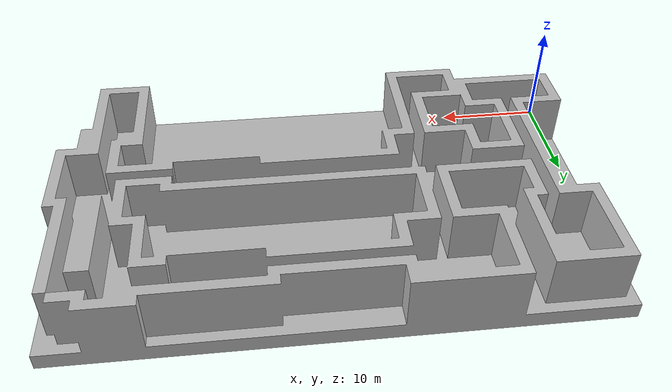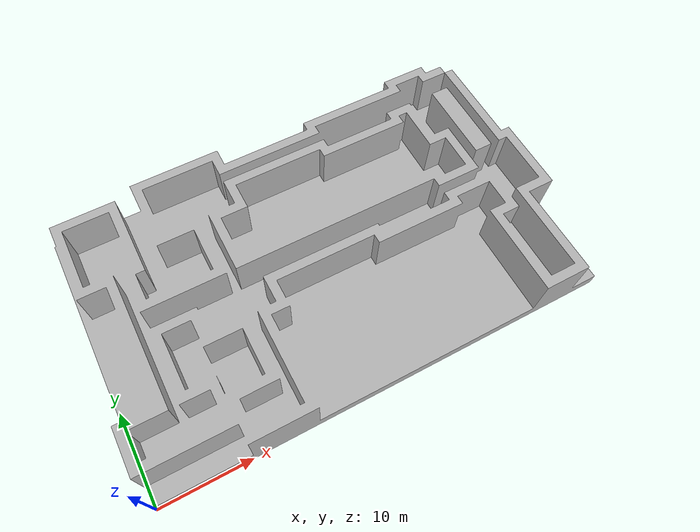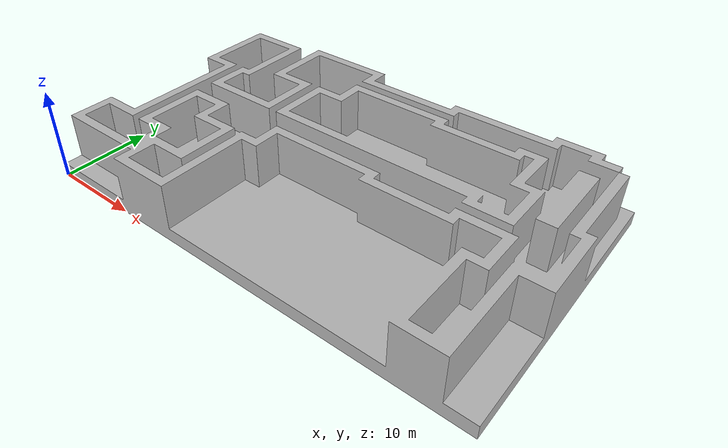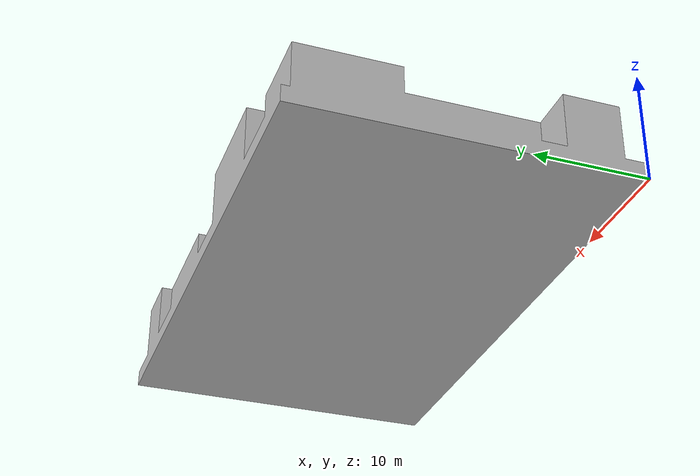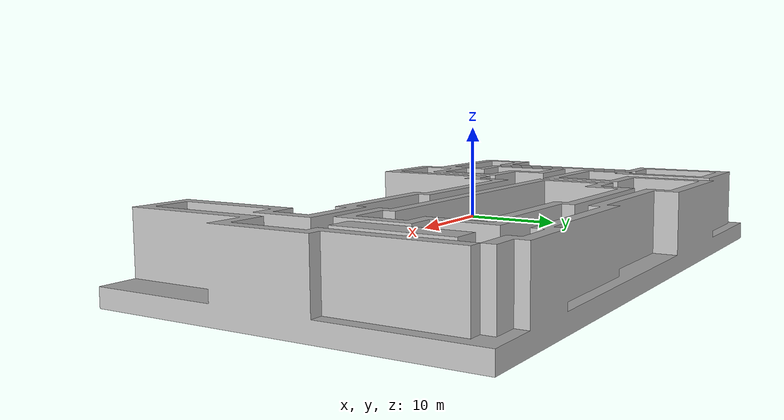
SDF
<?xml version='1.0' ?><sdf version='1.6'><model name='rooms1_2022-02-23_23:09:26.676922'><static>true</static><link name='link'><pose>0 0 0 0 0 0</pose><collision name='collision'><geometry><mesh><uri>model://rooms1_2022-02-23_23:09:26.676922/rooms1_2022-02-23_23:09:26.676922.stl</uri></mesh></geometry></collision><visual name='visual'><geometry><mesh><uri>model://rooms1_2022-02-23_23:09:26.676922/rooms1_2022-02-23_23:09:26.676922.stl</uri></mesh></geometry></visual></link></model></sdf>
